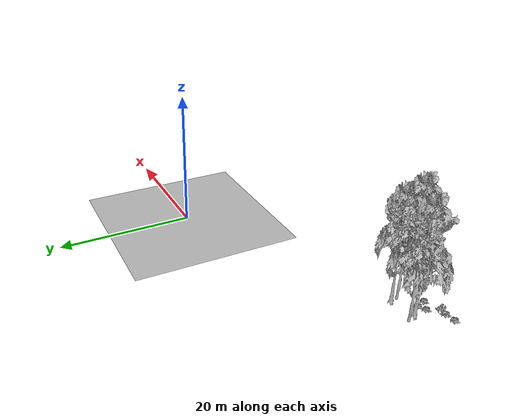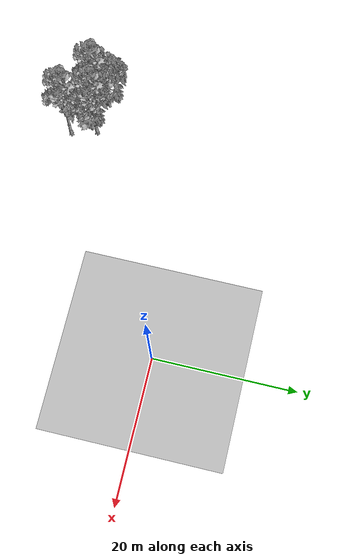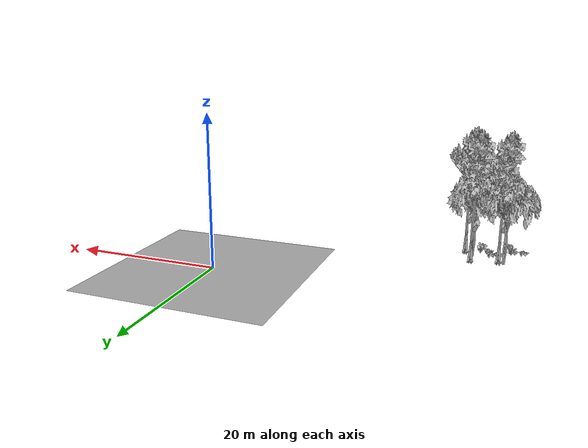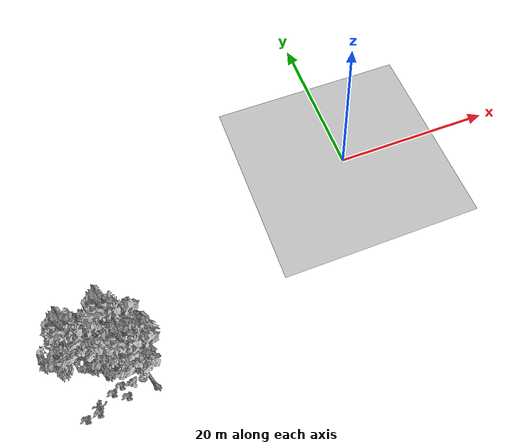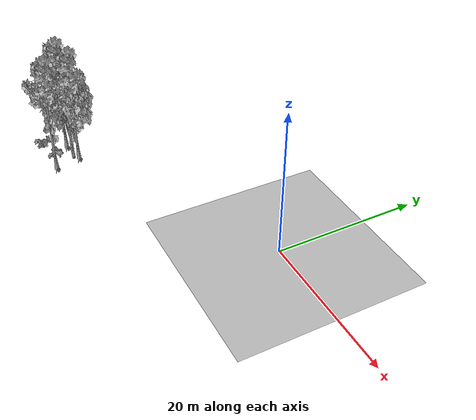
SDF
<sdf version="1.7">
 <world name="default">
  <model name="ground_plane">
   <static>1</static>
   <link name="link">
    <collision name="collision">
     <pose>-50 0 0 0 -0 0</pose>
     <geometry><plane><normal>0 0 1</normal><size>80 80</size></plane></geometry>
     <surface><contact><ode><min_depth>0.01</min_depth><max_vel>0</max_vel></ode></contact></surface>
    </collision>
    <visual name="grass">
     <cast_shadows>0</cast_shadows>
     <geometry>
      <mesh>
       <scale>0.46714285714285714 0.46714285714285714 0.1</scale>
       <uri>file://grass_plane/meshes/grass_plane.dae</uri>
      </mesh>
     </geometry>
    </visual>
   </link>
  </model>
  <model name="Tree 223">
   <static>1</static>
   <pose>-30.700475904979633 -15.74575959795407 0 1.57079 -0 0</pose>
   <link name="link">
    <collision name="collision">
     <geometry><mesh><scale>3.5 5 3.5</scale><uri>model://tree_9/meshes/tree_9.obj</uri></mesh></geometry>
    </collision>
    <visual name="visual">
     <geometry><mesh><scale>3.5 5 3.5</scale><uri>model://tree_9/meshes/tree_9.obj</uri></mesh></geometry>
    </visual>
   </link>
  </model>
  <model name="Tree 270">
   <static>1</static>
   <pose>-29.711575845154 -19.37280349586249 0 1.57079 -0 0</pose>
   <link name="link">
    <collision name="collision">
     <geometry><mesh><scale>3.5 5 3.5</scale><uri>model://tree_9/meshes/tree_9.obj</uri></mesh></geometry>
    </collision>
    <visual name="visual">
     <geometry><mesh><scale>3.5 5 3.5</scale><uri>model://tree_9/meshes/tree_9.obj</uri></mesh></geometry>
    </visual>
   </link>
  </model>
  <model name="Tree 353">
   <static>1</static>
   <pose>-34.28114529150765 -16.477191630335113 0 1.57079 -0 0</pose>
   <link name="link">
    <collision name="collision">
     <geometry><mesh><scale>3.5 5 3.5</scale><uri>model://tree_9/meshes/tree_9.obj</uri></mesh></geometry>
    </collision>
    <visual name="visual">
     <geometry><mesh><scale>3.5 5 3.5</scale><uri>model://tree_9/meshes/tree_9.obj</uri></mesh></geometry>
    </visual>
   </link>
  </model>
  <model name="Tree 446">
   <static>1</static>
   <pose>-30.96880782992914 -16.482553904987824 0 1.57079 -0 0</pose>
   <link name="link">
    <collision name="collision">
     <geometry><mesh><scale>3.5 5 3.5</scale><uri>model://tree_2/meshes/tree_2.obj</uri></mesh></geometry>
    </collision>
    <visual name="visual">
     <geometry><mesh><scale>3.5 5 3.5</scale><uri>model://tree_2/meshes/tree_2.obj</uri></mesh></geometry>
    </visual>
   </link>
  </model>
  <model name="Tree 518">
   <static>1</static>
   <pose>-35.08128656631486 -14.961749153779849 0 1.57079 -0 0</pose>
   <link name="link">
    <collision name="collision">
     <geometry><mesh><scale>3.5 5 3.5</scale><uri>model://tree_2/meshes/tree_2.obj</uri></mesh></geometry>
    </collision>
    <visual name="visual">
     <geometry><mesh><scale>3.5 5 3.5</scale><uri>model://tree_2/meshes/tree_2.obj</uri></mesh></geometry>
    </visual>
   </link>
  </model>
  <model name="Bush 42">
   <static>1</static>
   <pose>-32.90831616141398 -19.26517970118902 0 1.57079 -0 0</pose>
   <link name="link">
    <collision name="collision">
     <geometry><mesh><scale>2 2 2</scale><uri>model://bush_2/meshes/bush_2.obj</uri></mesh></geometry>
     <surface><contact><collide_without_contact>false</collide_without_contact></contact></surface>
    </collision>
    <visual name="visual">
     <geometry><mesh><scale>2 2 2</scale><uri>model://bush_2/meshes/bush_2.obj</uri></mesh></geometry>
    </visual>
   </link>
  </model>
  <model name="Bush 465">
   <static>1</static>
   <pose>-37.441865952238295 -20.06816712980557 0 1.57079 -0 0</pose>
   <link name="link">
    <collision name="collision">
     <geometry><mesh><scale>2 2 2</scale><uri>model://bush_2/meshes/bush_2.obj</uri></mesh></geometry>
     <surface><contact><collide_without_contact>false</collide_without_contact></contact></surface>
    </collision>
    <visual name="visual">
     <geometry><mesh><scale>2 2 2</scale><uri>model://bush_2/meshes/bush_2.obj</uri></mesh></geometry>
    </visual>
   </link>
  </model>
  <model name="Bush 481">
   <static>1</static>
   <pose>-33.33644323266149 -17.92159021965741 0 1.57079 -0 0</pose>
   <link name="link">
    <collision name="collision">
     <geometry><mesh><scale>2 2 2</scale><uri>model://bush_2/meshes/bush_2.obj</uri></mesh></geometry>
     <surface><contact><collide_without_contact>false</collide_without_contact></contact></surface>
    </collision>
    <visual name="visual">
     <geometry><mesh><scale>2 2 2</scale><uri>model://bush_2/meshes/bush_2.obj</uri></mesh></geometry>
    </visual>
   </link>
  </model>
  <model name="Bush 531">
   <static>1</static>
   <pose>-36.10111143486126 -19.921734115240987 0 1.57079 -0 0</pose>
   <link name="link">
    <collision name="collision">
     <geometry><mesh><scale>2 2 2</scale><uri>model://bush_2/meshes/bush_2.obj</uri></mesh></geometry>
     <surface><contact><collide_without_contact>false</collide_without_contact></contact></surface>
    </collision>
    <visual name="visual">
     <geometry><mesh><scale>2 2 2</scale><uri>model://bush_2/meshes/bush_2.obj</uri></mesh></geometry>
    </visual>
   </link>
  </model>
  <model name="Bush 535">
   <static>1</static>
   <pose>-34.30681173022606 -18.381862055921275 0 1.57079 -0 0</pose>
   <link name="link">
    <collision name="collision">
     <geometry><mesh><scale>2 2 2</scale><uri>model://bush_2/meshes/bush_2.obj</uri></mesh></geometry>
     <surface><contact><collide_without_contact>false</collide_without_contact></contact></surface>
    </collision>
    <visual name="visual">
     <geometry><mesh><scale>2 2 2</scale><uri>model://bush_2/meshes/bush_2.obj</uri></mesh></geometry>
    </visual>
   </link>
  </model>
  <model name="Bush 541">
   <static>1</static>
   <pose>-31.862287936012756 -18.251950233019265 0 1.57079 -0 0</pose>
   <link name="link">
    <collision name="collision">
     <geometry><mesh><scale>2 2 2</scale><uri>model://bush_0/meshes/bush_0.obj</uri></mesh></geometry>
     <surface><contact><collide_without_contact>false</collide_without_contact></contact></surface>
    </collision>
    <visual name="visual">
     <geometry><mesh><scale>2 2 2</scale><uri>model://bush_0/meshes/bush_0.obj</uri></mesh></geometry>
    </visual>
   </link>
  </model>
  <model name="Bush 573">
   <static>1</static>
   <pose>-35.70714502678942 -19.4355012251948 0 1.57079 -0 0</pose>
   <link name="link">
    <collision name="collision">
     <geometry><mesh><scale>2 2 2</scale><uri>model://bush_4/meshes/bush_4.obj</uri></mesh></geometry>
     <surface><contact><collide_without_contact>false</collide_without_contact></contact></surface>
    </collision>
    <visual name="visual">
     <geometry><mesh><scale>2 2 2</scale><uri>model://bush_4/meshes/bush_4.obj</uri></mesh></geometry>
    </visual>
   </link>
  </model>
 </world>
</sdf>
